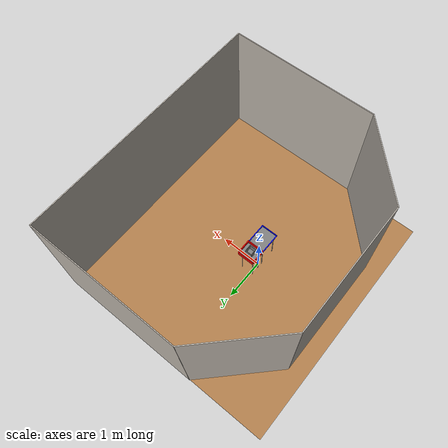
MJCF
<mujoco model="table_arena">
  <asset>
    <texture builtin="gradient" height="256" rgb1=".9 .9 1." rgb2=".2 .3 .4" type="skybox" width="256"/>
    <texture file="../textures/wood-tiles.png" type="2d" name="texplane"/>
    <material name="floorplane" reflectance="0.01" shininess="0.0" specular="0.0" texrepeat="2 2" texture="texplane" texuniform="true"/>
    <!-- ceramic table texture and material-->
    <texture file="../textures/ceramic.png" type="cube" name="tex-ceramic"/>
    <material name="table_ceramic" reflectance="0.0" shininess="0.0" specular="0.2" texrepeat="1 1" texture="tex-ceramic" />
    <!-- steel legs -->
    <texture file="../textures/steel-brushed.png" type="cube" name="tex-steel-brushed"/>
    <material name="table_legs_metal" reflectance="0.8" shininess="0.8" texrepeat="1 1" texture="tex-steel-brushed" />
    <!-- plaster walls -->
    <texture file="../textures/cream-plaster.png" type="2d" name="tex-cream-plaster"/>
    <material name="walls_mat" reflectance="0.0" shininess="0.1" specular="0.1" texrepeat="3 3" texture="tex-cream-plaster" texuniform="true" />
    <!-- added table texture and material for domain randomization -->
    <texture  name="textable" builtin="flat" height="512" width="512" rgb1="0.5 0.5 0.5" rgb2="0.5 0.5 0.5"/>
    <material name="table_mat" texture="textable" />

    <texture file="../textures/light-wood.png" type="2d" name="tex-light-wood"/>
    <texture file="../textures/dark-wood.png" type="2d" name="tex-dark-wood"/>
    <material name="light-wood" reflectance="0" texrepeat="15 15" texture="tex-light-wood" texuniform="true"/>
    <material name="dark-wood" reflectance="0" texrepeat="5 5" texture="tex-dark-wood" texuniform="true"/>

    <mesh file="meshes/trash_can.stl" name="trashcan_mesh" scale="0.01 0.01 0.02"/>
  </asset>
  <worldbody>
    <!-- Floor -->
    <geom condim="3" material="floorplane" name="floor" pos="0 0 0" size="3 3 .125" type="plane"/>
    <!-- Walls (visual only) -->
    <geom pos="-1.25 2.25 1.5" quat="0.6532815 0.6532815 0.2705981 0.2705981" size="1.06 1.5 0.01" type="box" conaffinity="0" contype="0" group="1" name="wall_leftcorner_visual" material="walls_mat"/>
    <geom pos="-1.25 -2.25 1.5" quat="0.6532815 0.6532815 -0.2705981 -0.2705981" size="1.06 1.5 0.01" type="box" conaffinity="0" contype="0" group="1" name="wall_rightcorner_visual" material="walls_mat"/>
    <geom pos="1.25 3 1.5" quat="0.7071 0.7071 0 0" size="1.75 1.5 0.01" type="box" conaffinity="0" contype="0" group="1" name="wall_left_visual" material="walls_mat"/>
    <geom pos="1.25 -3 1.5" quat="0.7071 -0.7071 0 0" size="1.75 1.5 0.01" type="box" conaffinity="0" contype="0" group="1" name="wall_right_visual" material="walls_mat"/>
    <geom pos="-2 0 1.5" quat="0.5 0.5 0.5 0.5" size="1.5 1.5 0.01" type="box" conaffinity="0" contype="0" group="1" name="wall_rear_visual" material="walls_mat"/>
    <geom pos="3 0 1.5" quat="0.5 0.5 -0.5 -0.5" size="3 1.5 0.01" type="box" conaffinity="0" contype="0" group="1" name="wall_front_visual" material="walls_mat"/>
    <!-- Table body -->
    <body name="bin1" pos="0.1 -0.26 0.8">
      <geom name="floor1" pos="0 0 0" size="0.2 0.25 0.02" type="box" group="0" friction="1 0.005 0.0001"/>
      <geom pos="0 0 0" material="light-wood" size="0.2 0.25 0.02" type="box" conaffinity="0" contype="0" group="1"/>
        <geom pos="0 0.25 0.03" size="0.21 0.01 0.01" type="box" group="0" friction="1 0.005 0.0001" rgba="0 0 1 1"/>
        <geom pos="0 0.25 0.03" size="0.21 0.01 0.01" type="box" conaffinity="0" contype="0" group="1" material="light-wood" name="bin1_left_wall"/>

        <geom pos="0 -0.25 0.03" size="0.21 0.01 0.01" type="box" group="0" friction="1 0.005 0.0001" rgba="0 0 1 1"/>
        <geom pos="0 -0.25 0.03" size="0.21 0.01 0.01" type="box" conaffinity="0" contype="0" group="1" material="light-wood" name="bin1_right_wall"/>

        <geom pos="0.2 0 0.03" size="0.01 0.25 0.01" type="box" group="0" friction="1 0.005 0.0001" rgba="0 0 1 1"/>
        <geom pos="0.2 0 0.03" size="0.01 0.25 0.01" type="box" conaffinity="0" contype="0" group="1" material="light-wood" name="bin1_front_wall"/>

        <geom pos="-0.2 0 0.03" size="0.01 0.25 0.01" type="box" group="0" friction="1 0.005 0.0001" rgba="0 0 1 1"/>
        <geom pos="-0.2 0 0.03" size="0.01 0.25 0.01" type="box" conaffinity="0" contype="0" group="1" material="light-wood" name="bin1_rear_wall"/>
        <!-- Legs (visual only) -->
        <geom pos="0.15 0.2 -0.4" size="0.01 0.4" type="cylinder" conaffinity="0" contype="0" group="1" name="bin1_leg1_visual" material="table_legs_metal"/>
        <geom pos="-0.15 0.2 -0.4" size="0.01 0.4" type="cylinder" conaffinity="0" contype="0" group="1" name="bin1_leg2_visual" material="table_legs_metal"/>
        <geom pos="-0.15 -0.2 -0.4" size="0.01 0.4" type="cylinder" conaffinity="0" contype="0" group="1" name="bin1_leg3_visual" material="table_legs_metal"/>
        <geom pos="0.15 -0.2 -0.4" size="0.01 0.4" type="cylinder" conaffinity="0" contype="0" group="1" name="bin1_leg4_visual" material="table_legs_metal"/>
    </body>
    <body name="bin2" pos="0.1 0.18 0.8">
    <!--floor-->
      <geom name="floor2" pos="0 0 0" size="0.2 0.175 0.02" type="box" group="0" friction="1 0.005 0.0001"/>
      <geom pos="0 0 0" size="0.2 0.175 0.02" type="box" conaffinity="0" contype="0" group="1" material="dark-wood"/>
        <!--right side -->
        <geom pos="0 0.175 0.05" size="0.2 0.01 0.05" type="box" group="0" friction="1 0.005 0.0001" rgba="1 0 0 1"/>
        <geom pos="0 0.175 0.05" size="0.2 0.01 0.05" type="box" conaffinity="0" contype="0" group="1" material="dark-wood"/>
        <!--left side -->
        <geom pos="0 -0.175 0.05" size="0.21 0.01 0.05" type="box" group="0" friction="1 0.005 0.0001" rgba="1 0 0 1"/>
        <geom pos="0 -0.175 0.05" size="0.21 0.01 0.05" type="box" conaffinity="0" contype="0" group="1" material="dark-wood"/>
        <!--front side-->
        <geom pos="0.2 0 0.05" size="0.01 0.175 0.05" type="box" group="0" friction="1 0.005 0.0001" rgba="1 0 0 1"/>
        <geom pos="0.2 0 0.05" size="0.01 0.175 0.05" type="box" conaffinity="0" contype="0" group="1" material="dark-wood"/>
        <!--robot side-->
        <geom pos="-0.2 0 0.05" size="0.01 0.175 0.05" type="box" group="0" friction="1 0.005 0.0001" rgba="1 0 0 1"/>
        <geom pos="-0.2 0 0.05" size="0.01 0.175 0.05" type="box" conaffinity="0" contype="0" group="1" material="dark-wood"/>
        <!-- Legs (visual only) -->
        <geom pos="0.15 0.1 -0.4" size="0.01 0.4" type="cylinder" conaffinity="0" contype="0" group="1" name="bin2_leg1_visual" material="table_legs_metal"/>
        <geom pos="-0.15 0.1 -0.4" size="0.01 0.4" type="cylinder" conaffinity="0" contype="0" group="1" name="bin2_leg2_visual" material="table_legs_metal"/>
        <geom pos="-0.15 -0.1 -0.4" size="0.01 0.4" type="cylinder" conaffinity="0" contype="0" group="1" name="bin2_leg3_visual" material="table_legs_metal"/>
        <geom pos="0.15 -0.1 -0.4" size="0.01 0.4" type="cylinder" conaffinity="0" contype="0" group="1" name="bin2_leg4_visual" material="table_legs_metal"/>
    </body>

    <body name="trashcan" pos="0.1 0.18 0.825">
      <geom pos="0 0.08 0.0805" size="0.08 0.005 0.08" type="box" group="0" conaffinity="1" name="trashcan1_collision" friction="1 0.005 0.0001"/>
      <geom pos="0 0.08 0.0805" size="0.08 0.005 0.08" type="box" group="1" conaffinity="0" contype="0" name="trashcan1_visual" rgba="0.1 0.1 0.5 0.5"/>

      <geom pos="-0.08 0 0.0805" size="0.005 0.08 0.08" type="box" group="0" conaffinity="1" name="trashcan2_collsion" friction="1 0.005 0.0001"/>
      <geom pos = "-0.08 0 0.0805" size="0.005 0.08 0.08 " type="box" group="1" conaffinity="0" contype="0" name="trashcan2_visual" rgba="0.1 0.1 0.5 0.5"/>

      <geom pos="0.08 0 0.0805" size="0.005 0.08 0.08" type="box" group="0" conaffinity="1" name="trashcan3_collsion" friction="1 0.005 0.0001"/>
      <geom pos = "0.08 0 0.0805" size="0.005 0.08 0.08" type="box" group="1" conaffinity="0" contype="0" name="trashcan3_visual" rgba="0.1 0.1 0.5 0.5"/>

      <geom pos="0 -0.08 0.0805" size="0.08 0.005 0.08" type="box" group="0" conaffinity="1" name="trashcan4_collision" friction="1 0.005 0.0001"/>
      <geom pos="0 -0.08 0.0805" size="0.08 0.005 0.08" type="box" group="1" conaffinity="0" contype="0" name="trashcan4_visual" rgba="0.1 0.1 0.5 0.5"/>

      <geom pos="0 0 0." size="0.08 0.08 0.005" type="box" group="0" conaffinity="1" name="trashcan5_collision" friction="1 0.005 0.0001"/>
      <geom pos="0 0 0." size="0.08 0.08 0.005" type="box" group="1" conaffinity="0" contype="0" name="trashcan5_visual" rgba="0.1 0.1 0.5 0.5" friction="1 0.005 0.0001" />
    </body>

    <light name="light1" diffuse=".8 .8 .8" dir="0 -.15 -1" directional="false" pos="1 1 4.0" specular="0.3 0.3 0.3" castshadow="false"/>
    <light name="light2" diffuse=".8 .8 .8" dir="0 -.15 -1" directional="false" pos="-3. -3. 4.0" specular="0.3 0.3 0.3" castshadow="false"/>
    <!-- front view -->
    <camera mode="fixed" name="frontview" pos="1.6 0 1.45" quat="0.56 0.43 0.43 0.56"/>
    <!-- bird view -->
    <camera mode="fixed" name="birdview" pos="-0.2 0 3.0" quat="0.7071 0 0 0.7071"/>
    <!-- agent view -->
    <camera mode="fixed" name="agentview" pos="0.5 0 1.35" quat="0.653 0.271 0.271 0.653"/>
    <!-- side view -->
    <camera mode="fixed" name="sideview" pos="-0.05651774593317116 1.2761224129427358 1.4879572214102434" quat="0.009905065491771751 0.006877963156909582 0.5912228352893879 0.806418094001364" />
  </worldbody>
</mujoco>
